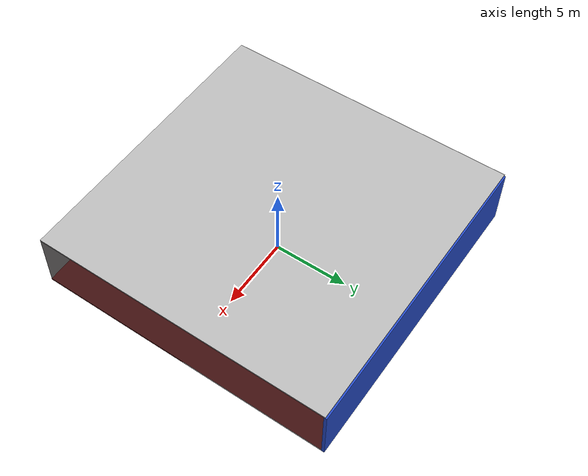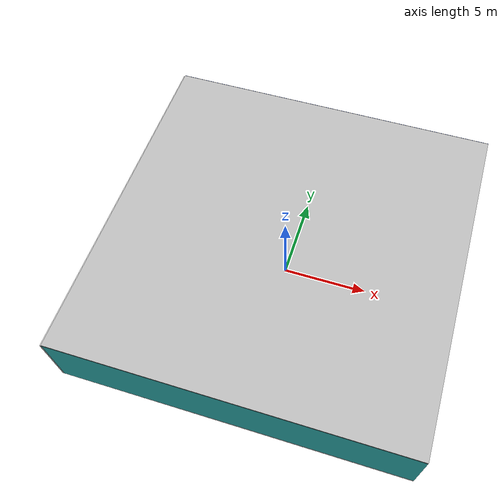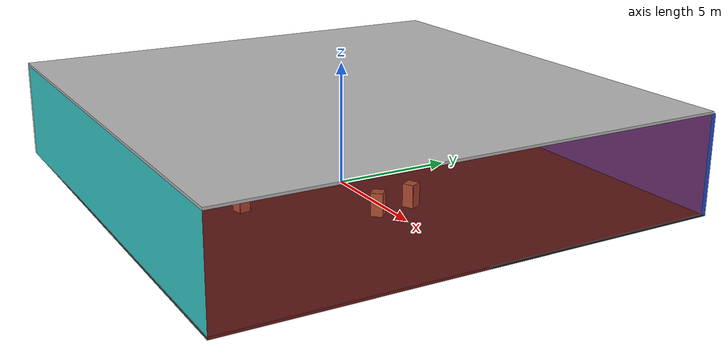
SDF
<sdf version="1.4">
 <world name="default">
  <physics type="ode">
   <max_step_size>0.001</max_step_size>
   <real_time_factor>1</real_time_factor>
   <real_time_update_rate>1000</real_time_update_rate>
   <gravity>0 0 -9.8</gravity>
  </physics>
  <scene><ambient>0.4 0.4 0.4 1</ambient><background>0.7 0.7 0.7 1</background><shadows>1</shadows></scene>
  <model name="Surrounding">
   <static>1</static>
   <link name="Ceiling">
    <collision name="Ceiling_Collision"><geometry><box><size>20 20 0.1</size></box></geometry></collision>
    <visual name="Ceiling_Visual">
     <geometry><box><size>20 20 0.1</size></box></geometry>
     <material>
      <script><uri>file://media/materials/scripts/gazebo.material</uri><name>Gazebo/PioneerBody</name></script>
     </material>
    </visual>
    <pose>0 0 4.05 0 0 0</pose>
   </link>
   <link name="Wall_South">
    <collision name="Wall_South_Collision">
     <geometry><box><size>20 0 4</size></box></geometry>
     <pose>0 0 2 0 -0 0</pose>
    </collision>
    <visual name="Wall_South_Visual">
     <pose>0 0 2 0 -0 0</pose>
     <geometry><box><size>20 0 4</size></box></geometry>
     <material>
      <script>
       <uri>file://media/materials/scripts/gazebo.material</uri>
       <name>Gazebo/TurquoiseGlowOutline</name>
      </script>
     </material>
    </visual>
    <velocity_decay><linear>0</linear><angular>0</angular></velocity_decay>
    <pose>0 -10 0 0 -0 0</pose>
   </link>
   <link name="Wall_East">
    <collision name="Wall_21_Collision">
     <geometry><box><size>20 0 4</size></box></geometry>
     <pose>0 0 2 0 -0 0</pose>
    </collision>
    <visual name="Wall_21_Visual">
     <pose>0 0 2 0 -0 0</pose>
     <geometry><box><size>20 0 4</size></box></geometry>
     <material>
      <script><uri>file://media/materials/scripts/gazebo.material</uri><name>Gazebo/RedTransparent</name></script>
     </material>
    </visual>
    <velocity_decay><linear>0</linear><angular>0</angular></velocity_decay>
    <pose>10 0 0 0 -0 1.5708</pose>
   </link>
   <link name="Wall_North">
    <collision name="Wall_22_Collision">
     <geometry><box><size>20 0.2 4</size></box></geometry>
     <pose>0 0 2 0 -0 0</pose>
    </collision>
    <visual name="Wall_22_Visual">
     <pose>0 0 2 0 -0 0</pose>
     <geometry><box><size>20 0.2 4</size></box></geometry>
     <material>
      <script><uri>file://media/materials/scripts/gazebo.material</uri><name>Gazebo/BlueGlow</name></script>
     </material>
    </visual>
    <velocity_decay><linear>0</linear><angular>0</angular></velocity_decay>
    <pose>0 10 0 0 -0 0</pose>
   </link>
   <link name="Wall_West">
    <collision name="Wall_23_Collision">
     <geometry><box><size>20 0.2 4</size></box></geometry>
     <pose>0 0 2 0 -0 0</pose>
    </collision>
    <visual name="Wall_23_Visual">
     <pose>0 0 2 0 -0 0</pose>
     <geometry><box><size>20 0.2 4</size></box></geometry>
     <material>
      <script><uri>file://media/materials/scripts/gazebo.material</uri><name>Gazebo/White</name></script>
     </material>
    </visual>
    <velocity_decay><linear>0</linear><angular>0</angular></velocity_decay>
    <pose>-10 0 0 0 0 -1.5708</pose>
   </link>
   <link name="Ground_link">
    <collision name="collision">
     <pose>0 0 .05 0 -0 0</pose>
     <geometry><box><size>20 20 0.1</size></box></geometry>
    </collision>
    <visual name="visual">
     <pose>0 0 .05 0 -0 0</pose>
     <geometry><box><size>20 20 0.1</size></box></geometry>
     <material>
      <script><uri>file://media/materials/scripts/gazebo.material</uri><name>Gazebo/FlatBlack</name></script>
     </material>
    </visual>
   </link>
   <static>1</static>
  </model>
  <spherical_coordinates>
   <surface_model>EARTH_WGS84</surface_model>
   <latitude_deg>0</latitude_deg>
   <longitude_deg>0</longitude_deg>
   <elevation>0</elevation>
   <heading_deg>0</heading_deg>
  </spherical_coordinates>
  <light name="lightball_0" type="diffuse">
   <diffuse>0.8 0.8 0.8 1</diffuse>
   <specular>0.2 0.2 0.2 1</specular>
   <attenuation>
    <range>100</range>
    <constant>0.7</constant>
    <linear>0.01</linear>
    <quadratic>0.001</quadratic>
   </attenuation>
   <direction>-0.5 0.1 -0.9</direction>
   <pose>-3.46618141506 -9.05207708132 2.80480652839 0 0 0</pose>
  </light>
  <light name="lightball_1" type="diffuse">
   <diffuse>0.8 0.8 0.8 1</diffuse>
   <specular>0.2 0.2 0.2 1</specular>
   <attenuation>
    <range>100</range>
    <constant>0.7</constant>
    <linear>0.01</linear>
    <quadratic>0.001</quadratic>
   </attenuation>
   <direction>-0.5 0.1 -0.9</direction>
   <pose>-9.69976516689 -7.62542556472 3.57075335899 0 0 0</pose>
  </light>
  <light name="lightball_2" type="diffuse">
   <diffuse>0.8 0.8 0.8 1</diffuse>
   <specular>0.2 0.2 0.2 1</specular>
   <attenuation>
    <range>100</range>
    <constant>0.7</constant>
    <linear>0.01</linear>
    <quadratic>0.001</quadratic>
   </attenuation>
   <direction>-0.5 0.1 -0.9</direction>
   <pose>6.23946201633 7.92226965487 0.649974863918 0 0 0</pose>
  </light>
  <light name="lightball_3" type="diffuse">
   <diffuse>0.8 0.8 0.8 1</diffuse>
   <specular>0.2 0.2 0.2 1</specular>
   <attenuation>
    <range>100</range>
    <constant>0.7</constant>
    <linear>0.01</linear>
    <quadratic>0.001</quadratic>
   </attenuation>
   <direction>-0.5 0.1 -0.9</direction>
   <pose>0.90722389721 6.3157058608 1.08636601968 0 0 0</pose>
  </light>
  <light name="lightball_4" type="diffuse">
   <diffuse>0.8 0.8 0.8 1</diffuse>
   <specular>0.2 0.2 0.2 1</specular>
   <attenuation>
    <range>100</range>
    <constant>0.7</constant>
    <linear>0.01</linear>
    <quadratic>0.001</quadratic>
   </attenuation>
   <direction>-0.5 0.1 -0.9</direction>
   <pose>-7.52000890133 2.78517619052 2.69447318456 0 0 0</pose>
  </light>
  <light name="lightball_5" type="diffuse">
   <diffuse>0.8 0.8 0.8 1</diffuse>
   <specular>0.2 0.2 0.2 1</specular>
   <attenuation>
    <range>100</range>
    <constant>0.7</constant>
    <linear>0.01</linear>
    <quadratic>0.001</quadratic>
   </attenuation>
   <direction>-0.5 0.1 -0.9</direction>
   <pose>9.35642035908 6.61626826264 1.81794706068 0 0 0</pose>
  </light>
  <light name="lightball_6" type="diffuse">
   <diffuse>0.8 0.8 0.8 1</diffuse>
   <specular>0.2 0.2 0.2 1</specular>
   <attenuation>
    <range>100</range>
    <constant>0.7</constant>
    <linear>0.01</linear>
    <quadratic>0.001</quadratic>
   </attenuation>
   <direction>-0.5 0.1 -0.9</direction>
   <pose>0.357178234829 -9.32223821507 1.74365244814 0 0 0</pose>
  </light>
  <light name="lightball_7" type="diffuse">
   <diffuse>0.8 0.8 0.8 1</diffuse>
   <specular>0.2 0.2 0.2 1</specular>
   <attenuation>
    <range>100</range>
    <constant>0.7</constant>
    <linear>0.01</linear>
    <quadratic>0.001</quadratic>
   </attenuation>
   <direction>-0.5 0.1 -0.9</direction>
   <pose>0.602946886163 -4.79479796663 3.04692882779 0 0 0</pose>
  </light>
  <include><uri>model://cabinet</uri><pose>-7.48884290443 -2.10750427694 0 0 0 0.114681563789</pose></include>
  <include>
   <uri>model://construction_cone</uri>
   <pose>-7.95333177651 5.29024854373 0 0 0 2.67497599514</pose>
  </include>
  <include>
   <uri>model://robocup_3Dsim_goal</uri>
   <pose>-3.9309748436 1.43244648135 0 0 0 2.43107584047</pose>
  </include>
  <include><uri>model://cabinet</uri><pose>1.2205138994 -5.00465432273 0 0 0 0.189380847229</pose></include>
  <include><uri>model://cabinet</uri><pose>4.10183744559 -0.723407686146 0 0 0 0.837421003193</pose></include>
  <include><uri>model://cabinet</uri><pose>3.9144175229 0.859492676506 0 0 0 0.462212479256</pose></include>
 </world>
</sdf>

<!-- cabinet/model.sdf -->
<sdf version="1.5">
  <model name="cabinet">
    <static>true</static>
    <link name="cabinet_bottom_plate">
      <inertial>
        <pose>0 0 -1 0 0 0</pose>
        <inertia>
          <ixx>2.050000</ixx>
          <ixy>0</ixy>
          <ixz>0</ixz>
          <iyy>2.050000</iyy>
          <iyz>0</iyz>
          <izz>2.050000</izz>
        </inertia>
        <mass>25.000000</mass>
      </inertial>
      <collision name="cabinet_bottom_plate_geom">
        <pose>0 0 0.010000 0 0 0</pose>
        <geometry>
          <box>
            <size>0.450000 0.450000 0.020000</size>
          </box>
        </geometry>
      </collision>
      <visual name="cabinet_bottom_plate_geom_visual">
        <pose>0 0 0.010000 0 0 0</pose>
        <geometry>
          <box>
            <size>0.450000 0.450000 0.020000</size>
          </box>
        </geometry>
        <material>
          <script>
            <uri>model://media/materials/scripts/gazebo.material</uri>
            <name>Gazebo/Wood</name>
          </script>
        </material>
      </visual>
      <collision name="cabinet_bottom_plate_geom_cabinet_back_plate">
        <pose>0.235000 0 0.510000 0 0 0</pose>
        <geometry>
          <box>
            <size>0.020000 0.450000 1.020000</size>
          </box>
        </geometry>
      </collision>
      <visual name="cabinet_bottom_plate_geom_cabinet_back_plate_visual">
        <pose>0.235000 0 0.510000 0 0 0</pose>
        <geometry>
          <box>
            <size>0.020000 0.450000 1.020000</size>
          </box>
        </geometry>
        <material>
          <script>
            <uri>model://media/materials/scripts/gazebo.material</uri>
            <name>Gazebo/Wood</name>
          </script>
        </material>
      </visual>
      <collision name="cabinet_bottom_plate_geom_cabinet_left_plate">
        <pose>0 0.235000 0.510000 0 0 0</pose>
        <geometry>
          <box>
            <size>0.450000 0.020000 1.020000</size>
          </box>
        </geometry>
      </collision>
      <visual name="cabinet_bottom_plate_geom_cabinet_left_plate_visual">
        <pose>0 0.235000 0.510000 0 0 0</pose>
        <geometry>
          <box>
            <size>0.450000 0.020000 1.020000</size>
          </box>
        </geometry>
        <material>
          <script>
            <uri>model://media/materials/scripts/gazebo.material</uri>
            <name>Gazebo/Wood</name>
          </script>
        </material>
      </visual>
      <collision name="cabinet_bottom_plate_geom_cabinet_middle_plate">
        <pose>0 0 0.510000 0 0 0</pose>
        <geometry>
          <box>
            <size>0.450000 0.450000 0.020000</size>
          </box>
        </geometry>
      </collision>
      <visual name="cabinet_bottom_plate_geom_cabinet_middle_plate_visual">
        <pose>0 0 0.510000 0 0 0</pose>
        <geometry>
          <box>
            <size>0.450000 0.450000 0.020000</size>
          </box>
        </geometry>
        <material>
          <script>
            <uri>model://media/materials/scripts/gazebo.material</uri>
            <name>Gazebo/Wood</name>
          </script>
        </material>
      </visual>
      <collision name="cabinet_bottom_plate_geom_cabinet_right_plate">
        <pose>0 -0.235000 0.510000 0 0 0</pose>
        <geometry>
          <box>
            <size>0.450000 0.020000 1.020000</size>
          </box>
        </geometry>
      </collision>
      <visual name="cabinet_bottom_plate_geom_cabinet_right_plate_visual">
        <pose>0 -0.235000 0.510000 0 0 0</pose>
        <geometry>
          <box>
            <size>0.450000 0.020000 1.020000</size>
          </box>
        </geometry>
        <material>
          <script>
            <uri>model://media/materials/scripts/gazebo.material</uri>
            <name>Gazebo/Wood</name>
          </script>
        </material>
      </visual>
      <collision name="cabinet_bottom_plate_geom_cabinet_top_plate">
        <pose>0 0 1.010000 0 0 0</pose>
        <geometry>
          <box>
            <size>0.450000 0.450000 0.020000</size>
          </box>
        </geometry>
      </collision>
      <visual name="cabinet_bottom_plate_geom_cabinet_top_plate_visual">
        <pose>0 0 1.010000 0 0 0</pose>
        <geometry>
          <box>
            <size>0.450000 0.450000 0.020000</size>
          </box>
        </geometry>
        <material>
          <script>
            <uri>model://media/materials/scripts/gazebo.material</uri>
            <name>Gazebo/Wood</name>
          </script>
        </material>
      </visual>
    </link>
  </model>
</sdf>

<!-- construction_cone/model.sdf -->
<sdf version="1.5">
  <model name="Construction Cone">
    <link name="link">
      <collision name="collision">
        <geometry>
          <mesh>
            <scale>10 10 10</scale>
            <uri>file://isr-testbed/construction_cone/meshes/construction_cone.dae</uri>
          </mesh>
        </geometry>
      </collision>
      <visual name="visual">
        <geometry>
          <mesh>
            <scale>10 10 10</scale>
            <uri>file://isr-testbed/construction_cone/meshes/construction_cone.dae</uri>
          </mesh>
        </geometry>
      </visual>
    </link>
  </model>
</sdf>

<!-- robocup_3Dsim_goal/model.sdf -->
<sdf version="1.5">
  <model name="robocup_3d_goal">
    <static>true</static>
    <link name="left_post">
      <pose>0 1.05 0.45 0 0 0</pose>
      <collision name="collision">
        <geometry>
          <cylinder>
            <radius>0.05</radius>
            <length>0.9</length>
          </cylinder>
        </geometry>
      </collision>
      <visual name="visual">
        <geometry>
          <cylinder>
            <radius>0.05</radius>
            <length>0.9</length>
          </cylinder>
        </geometry>
        <material>
          <script>
            <uri>file://media/materials/scripts/gazebo.material</uri>
            <name>Gazebo/ZincYellow</name>
          </script>
        </material>
      </visual>
    </link>
    <link name="left_support_horiz_lower">
      <pose>0.30 1.05 0.01 0 0 0</pose>
      <collision name="collision">
        <geometry>
          <box>
            <size>0.50 0.02 0.02</size>
          </box>
        </geometry>
      </collision>
      <visual name="visual">
        <geometry>
          <box>
            <size>0.50 0.02 0.02</size>
          </box>
        </geometry>
        <material>
          <script>
            <uri>file://media/materials/scripts/gazebo.material</uri>
            <name>Gazebo/White</name>
          </script>
        </material>
      </visual>
    </link>
    <link name="left_support_horiz_upper">
      <pose>0.30 1.05 0.79 0 0 0</pose>
      <collision name="collision">
        <geometry>
          <box>
            <size>0.50 0.02 0.02</size>
          </box>
        </geometry>
      </collision>
      <visual name="visual">
        <geometry>
          <box>
            <size>0.50 0.02 0.02</size>
          </box>
        </geometry>
        <material>
          <script>
            <uri>file://media/materials/scripts/gazebo.material</uri>
            <name>Gazebo/White</name>
          </script>
        </material>
      </visual>
    </link>
    <link name="left_support_vertical">
      <pose>0.56 1.05 0.4 0 1.5708 0</pose>
      <collision name="collision">
        <geometry>
          <box>
            <size>0.80 0.02 0.02</size>
          </box>
        </geometry>
      </collision>
      <visual name="visual">
        <geometry>
          <box>
            <size>0.80 0.02 0.02</size>
          </box>
        </geometry>
        <material>
          <script>
            <uri>file://media/materials/scripts/gazebo.material</uri>
            <name>Gazebo/White</name>
          </script>
        </material>
      </visual>
    </link>
    <link name="right_support_horiz_lower">
      <pose>0.30 -1.05 0.01 0 0 0</pose>
      <collision name="collision">
        <geometry>
          <box>
            <size>0.50 0.02 0.02</size>
          </box>
        </geometry>
      </collision>
      <visual name="visual">
        <geometry>
          <box>
            <size>0.50 0.02 0.02</size>
          </box>
        </geometry>
        <material>
          <script>
            <uri>file://media/materials/scripts/gazebo.material</uri>
            <name>Gazebo/White</name>
          </script>
        </material>
      </visual>
    </link>
    <link name="right_support_horiz_upper">
      <pose>0.30 -1.05 0.79 0 0 0</pose>
      <collision name="collision">
        <geometry>
          <box>
            <size>0.50 0.02 0.02</size>
          </box>
        </geometry>
      </collision>
      <visual name="visual">
        <geometry>
          <box>
            <size>0.50 0.02 0.02</size>
          </box>
        </geometry>
        <material>
          <script>
            <uri>file://media/materials/scripts/gazebo.material</uri>
            <name>Gazebo/White</name>
          </script>
        </material>
      </visual>
    </link>
    <link name="right_support_vertical">
      <pose>0.56 -1.05 0.4 0 1.5708 0</pose>
      <collision name="collision">
        <geometry>
          <box>
            <size>0.80 0.02 0.02</size>
          </box>
        </geometry>
      </collision>
      <visual name="visual">
        <geometry>
          <box>
            <size>0.80 0.02 0.02</size>
          </box>
        </geometry>
        <material>
          <script>
            <uri>file://media/materials/scripts/gazebo.material</uri>
            <name>Gazebo/White</name>
          </script>
        </material>
      </visual>
    </link>
    <link name="center_support_horiz_lower">
      <pose>0.56 0 0.01 0 1.5708 0</pose>
      <collision name="collision">
        <geometry>
          <box>
            <size>0.02 2.08 0.02</size>
          </box>
        </geometry>
      </collision>
      <visual name="visual">
        <geometry>
          <box>
            <size>0.02 2.08 0.02</size>
          </box>
        </geometry>
        <material>
          <script>
            <uri>file://media/materials/scripts/gazebo.material</uri>
            <name>Gazebo/White</name>
          </script>
        </material>
      </visual>
    </link>
    <link name="center_support_horiz_upper">
      <pose>0.56 0 0.79 0 1.5708 0</pose>
      <collision name="collision">
        <geometry>
          <box>
            <size>0.02 2.08 0.02</size>
          </box>
        </geometry>
      </collision>
      <visual name="visual">
        <geometry>
          <box>
            <size>0.02 2.08 0.02</size>
          </box>
        </geometry>
        <material>
          <script>
            <uri>file://media/materials/scripts/gazebo.material</uri>
            <name>Gazebo/White</name>
          </script>
        </material>
      </visual>
    </link>
    <link name="right_post">
      <pose>0 -1.05 0.45 0 0 0</pose>
      <collision name="collision">
        <geometry>
          <cylinder>
            <radius>0.05</radius>
            <length>0.9</length>
          </cylinder>
        </geometry>
      </collision>
      <visual name="visual">
        <geometry>
          <cylinder>
            <radius>0.05</radius>
            <length>0.9</length>
          </cylinder>
        </geometry>
        <material>
          <script>
            <uri>file://media/materials/scripts/gazebo.material</uri>
            <name>Gazebo/ZincYellow</name>
          </script>
        </material>
      </visual>
    </link>
    <link name="crossbar">
      <pose>0 0 0.85 1.57 1.57 0</pose>
      <collision name="collision">
        <geometry>
          <cylinder>
            <radius>0.05</radius>
            <length>2.0</length>
          </cylinder>
        </geometry>
      </collision>
      <visual name="visual">
        <geometry>
          <cylinder>
            <radius>0.05</radius>
            <length>2.0</length>
          </cylinder>
        </geometry>
        <material>
          <script>
            <uri>file://media/materials/scripts/gazebo.material</uri>
            <name>Gazebo/ZincYellow</name>
          </script>
        </material>
      </visual>
    </link>
    <link name="center_net">
      <pose>0.56 0 0.40 0 0 0</pose>
      <collision name="collision">
        <geometry>
          <box>
            <size>0.01 2.1 0.80</size>
          </box>
        </geometry>
      </collision>
      <visual name="visual">
        <geometry>
          <box>
            <size>0.01 2.1 0.80</size>
          </box>
        </geometry>
        <material>
          <script>
            <uri>model://../model_source/models/robocup09_spl_field/materials/scripts/</uri>
            <uri>model://../model_source/models/robocup09_spl_field/materials/textures/</uri>
            <name>RoboCup/Net</name>
          </script>
        </material>
      </visual>
    </link>
    <link name="left_net">
      <pose>0.30 1.05 0.40 0 0 0</pose>
      <collision name="collision">
        <geometry>
          <box>
            <size>0.50 0.01 0.76</size>
          </box>
        </geometry>
      </collision>
      <visual name="visual">
        <geometry>
          <box>
            <size>0.50 0.01 0.76</size>
          </box>
        </geometry>
        <material>
          <script>
            <uri>model://../model_source/models/robocup09_spl_field/materials/scripts/</uri>
            <uri>model://../model_source/models/robocup09_spl_field/materials/textures/</uri>
            <name>RoboCup/Net</name>
          </script>
        </material>
      </visual>
    </link>
    <link name="right_net">
      <pose>0.30 -1.05 0.40 0 0 0</pose>
      <collision name="collision">
        <geometry>
          <box>
            <size>0.50 0.01 0.76</size>
          </box>
        </geometry>
      </collision>
      <visual name="visual">
        <geometry>
          <box>
            <size>0.50 0.01 0.76</size>
          </box>
        </geometry>
        <material>
          <script>
            <uri>model://../model_source/models/robocup09_spl_field/materials/scripts/</uri>
            <uri>model://../model_source/models/robocup09_spl_field/materials/textures/</uri>
            <name>RoboCup/Net</name>
          </script>
        </material>
      </visual>
    </link>
  </model>
</sdf>
